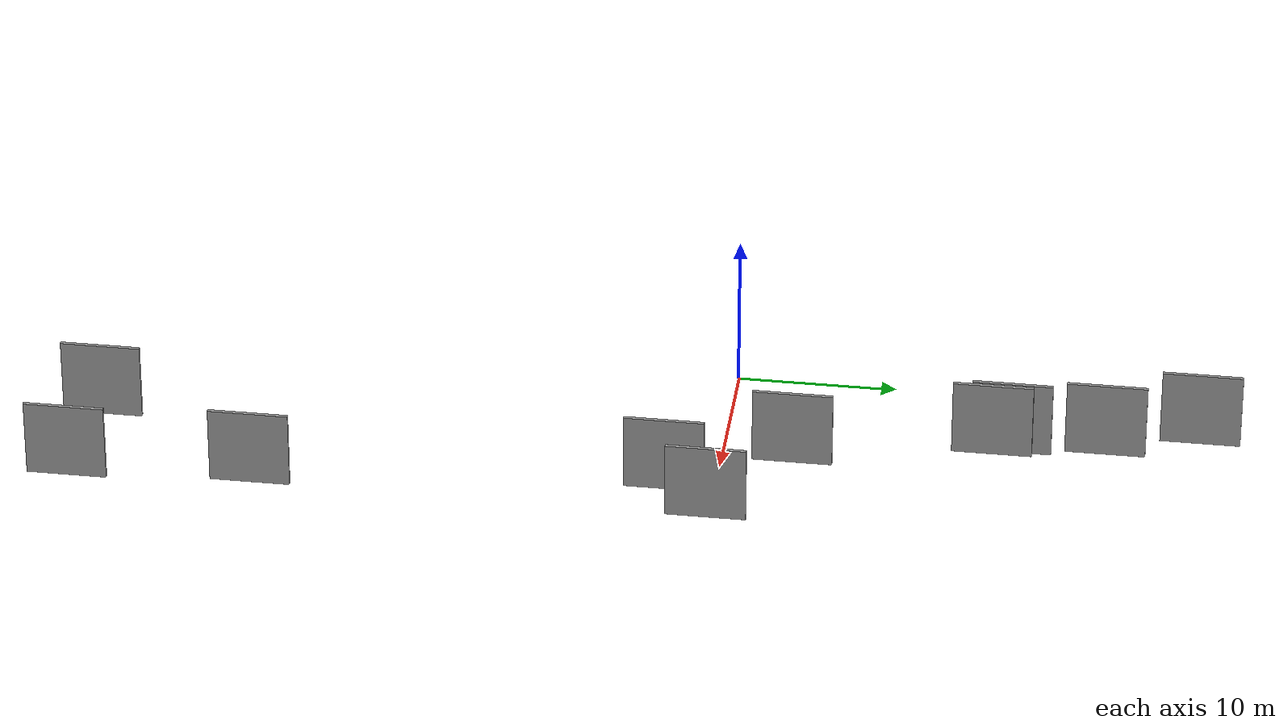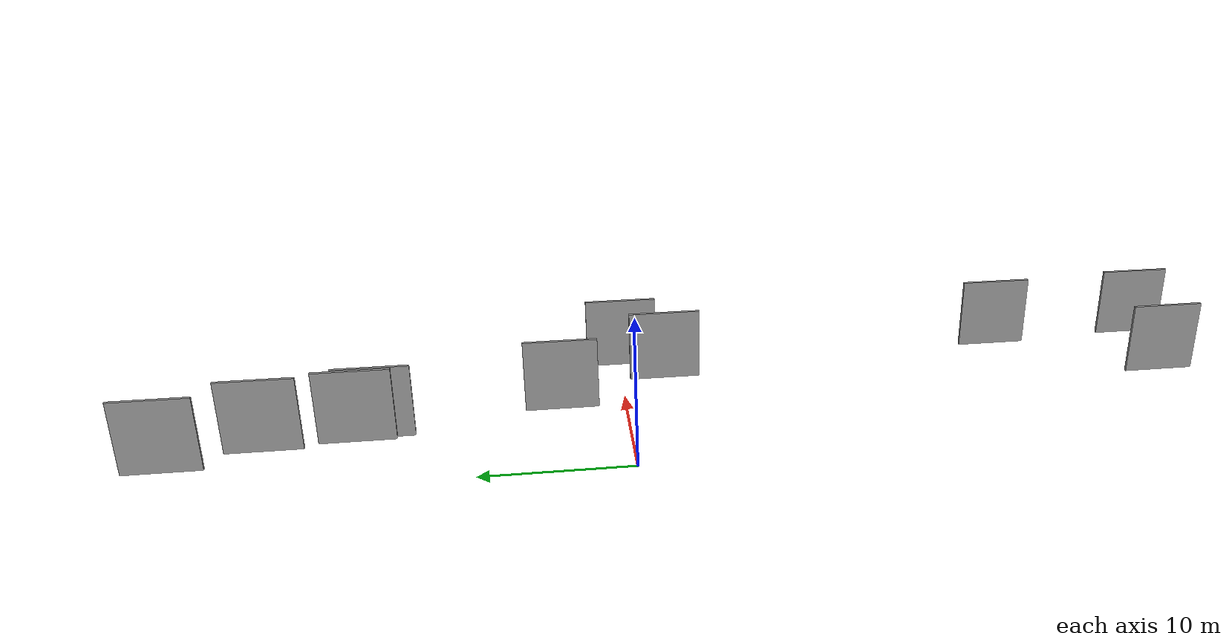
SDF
<sdf version="1.6">
 <world name="default">
  <scene>
   <sky><clouds><speed>12</speed></clouds></sky>
   <ambient>0.4 0.4 0.4 1</ambient>
   <background>0.7 0.7 0.7 1</background>
   <shadows>1</shadows>
  </scene>
  <gravity>0 0 -9.8066</gravity>
  <magnetic_field>6e-06 2.3e-05 -4.2e-05</magnetic_field>
  <physics default="0" name="default_physics" type="ode">
   <ode>
    <solver>
     <type>quick</type>
     <iters>10</iters>
     <sor>1.0</sor>
     <use_dynamic_moi_rescaling>0</use_dynamic_moi_rescaling>
    </solver>
    <constraints>
     <cfm>0</cfm>
     <erp>0.2</erp>
     <contact_max_correcting_vel>100</contact_max_correcting_vel>
     <contact_surface_layer>0.001</contact_surface_layer>
    </constraints>
   </ode>
   <max_step_size>0.004</max_step_size>
   <real_time_factor>1</real_time_factor>
   <real_time_update_rate>250</real_time_update_rate>
  </physics>
  <light name="sun" type="directional">
   <pose>0 0 10 0 0 0</pose>
   <diffuse>0.8 0.8 0.8 1</diffuse>
   <specular>0.2 0.2 0.2 1</specular>
   <attenuation>
    <range>1000</range>
    <constant>0.9</constant>
    <linear>0.01</linear>
    <quadratic>0.001</quadratic>
   </attenuation>
   <direction>-0.5 0.1 -0.9</direction>
  </light>
  <model name="grey_wall_1">
   <static>1</static>
   <pose>8.8391 4.3582 0.0 0.000000 0.000000 1.570796</pose>
   <link name="link">
    <pose>0 0 2.50 0 0 0</pose>
    <collision name="collision"><geometry><box><size>5.00 0.2 5.00</size></box></geometry></collision>
    <visual name="visual">
     <cast_shadows>0</cast_shadows>
     <geometry><box><size>5.00 0.2 5.00</size></box></geometry>
     <material>
      <script>
       <uri>model://grey_wall/materials/scripts</uri>
       <uri>model://grey_wall/materials/textures</uri>
       <name>vrc/grey_wall</name>
      </script>
     </material>
    </visual>
   </link>
  </model>
  <model name="grey_wall_2">
   <static>1</static>
   <pose>3.4165 29.3365 0.0 0.000000 0.000000 1.570796</pose>
   <link name="link">
    <pose>0 0 2.50 0 0 0</pose>
    <collision name="collision"><geometry><box><size>5.00 0.2 5.00</size></box></geometry></collision>
    <visual name="visual">
     <cast_shadows>0</cast_shadows>
     <geometry><box><size>5.00 0.2 5.00</size></box></geometry>
     <material>
      <script>
       <uri>model://grey_wall/materials/scripts</uri>
       <uri>model://grey_wall/materials/textures</uri>
       <name>vrc/grey_wall</name>
      </script>
     </material>
    </visual>
   </link>
  </model>
  <model name="grey_wall_3">
   <static>1</static>
   <pose>15.5218 -0.2248 0.0 0.000000 0.000000 1.570796</pose>
   <link name="link">
    <pose>0 0 2.50 0 0 0</pose>
    <collision name="collision"><geometry><box><size>5.00 0.2 5.00</size></box></geometry></collision>
    <visual name="visual">
     <cast_shadows>0</cast_shadows>
     <geometry><box><size>5.00 0.2 5.00</size></box></geometry>
     <material>
      <script>
       <uri>model://grey_wall/materials/scripts</uri>
       <uri>model://grey_wall/materials/textures</uri>
       <name>vrc/grey_wall</name>
      </script>
     </material>
    </visual>
   </link>
  </model>
  <model name="grey_wall_4">
   <static>1</static>
   <pose>5.9300 17.7278 0.0 0.000000 0.000000 1.570796</pose>
   <link name="link">
    <pose>0 0 2.50 0 0 0</pose>
    <collision name="collision"><geometry><box><size>5.00 0.2 5.00</size></box></geometry></collision>
    <visual name="visual">
     <cast_shadows>0</cast_shadows>
     <geometry><box><size>5.00 0.2 5.00</size></box></geometry>
     <material>
      <script>
       <uri>model://grey_wall/materials/scripts</uri>
       <uri>model://grey_wall/materials/textures</uri>
       <name>vrc/grey_wall</name>
      </script>
     </material>
    </visual>
   </link>
  </model>
  <model name="grey_wall_5">
   <static>1</static>
   <pose>12.7960 -3.1402 0.0 0.000000 0.000000 1.570796</pose>
   <link name="link">
    <pose>0 0 2.50 0 0 0</pose>
    <collision name="collision"><geometry><box><size>5.00 0.2 5.00</size></box></geometry></collision>
    <visual name="visual">
     <cast_shadows>0</cast_shadows>
     <geometry><box><size>5.00 0.2 5.00</size></box></geometry>
     <material>
      <script>
       <uri>model://grey_wall/materials/scripts</uri>
       <uri>model://grey_wall/materials/textures</uri>
       <name>vrc/grey_wall</name>
      </script>
     </material>
    </visual>
   </link>
  </model>
  <model name="grey_wall_6">
   <static>1</static>
   <pose>5.3883 23.5497 0.0 0.000000 0.000000 1.570796</pose>
   <link name="link">
    <pose>0 0 2.50 0 0 0</pose>
    <collision name="collision"><geometry><box><size>5.00 0.2 5.00</size></box></geometry></collision>
    <visual name="visual">
     <cast_shadows>0</cast_shadows>
     <geometry><box><size>5.00 0.2 5.00</size></box></geometry>
     <material>
      <script>
       <uri>model://grey_wall/materials/scripts</uri>
       <uri>model://grey_wall/materials/textures</uri>
       <name>vrc/grey_wall</name>
      </script>
     </material>
    </visual>
   </link>
  </model>
  <model name="grey_wall_7">
   <static>1</static>
   <pose>15.4390 -28.5988 0.0 0.000000 0.000000 1.570796</pose>
   <link name="link">
    <pose>0 0 2.50 0 0 0</pose>
    <collision name="collision"><geometry><box><size>5.00 0.2 5.00</size></box></geometry></collision>
    <visual name="visual">
     <cast_shadows>0</cast_shadows>
     <geometry><box><size>5.00 0.2 5.00</size></box></geometry>
     <material>
      <script>
       <uri>model://grey_wall/materials/scripts</uri>
       <uri>model://grey_wall/materials/textures</uri>
       <name>vrc/grey_wall</name>
      </script>
     </material>
    </visual>
   </link>
  </model>
  <model name="grey_wall_8">
   <static>1</static>
   <pose>16.1554 -39.9791 0.0 0.000000 0.000000 1.570796</pose>
   <link name="link">
    <pose>0 0 2.50 0 0 0</pose>
    <collision name="collision"><geometry><box><size>5.00 0.2 5.00</size></box></geometry></collision>
    <visual name="visual">
     <cast_shadows>0</cast_shadows>
     <geometry><box><size>5.00 0.2 5.00</size></box></geometry>
     <material>
      <script>
       <uri>model://grey_wall/materials/scripts</uri>
       <uri>model://grey_wall/materials/textures</uri>
       <name>vrc/grey_wall</name>
      </script>
     </material>
    </visual>
   </link>
  </model>
  <model name="grey_wall_9">
   <static>1</static>
   <pose>9.1433 -39.1066 0.0 0.000000 0.000000 1.570796</pose>
   <link name="link">
    <pose>0 0 2.50 0 0 0</pose>
    <collision name="collision"><geometry><box><size>5.00 0.2 5.00</size></box></geometry></collision>
    <visual name="visual">
     <cast_shadows>0</cast_shadows>
     <geometry><box><size>5.00 0.2 5.00</size></box></geometry>
     <material>
      <script>
       <uri>model://grey_wall/materials/scripts</uri>
       <uri>model://grey_wall/materials/textures</uri>
       <name>vrc/grey_wall</name>
      </script>
     </material>
    </visual>
   </link>
  </model>
  <model name="grey_wall_10">
   <static>1</static>
   <pose>6.2832 16.5587 0.0 0.000000 0.000000 1.570796</pose>
   <link name="link">
    <pose>0 0 2.50 0 0 0</pose>
    <collision name="collision"><geometry><box><size>5.00 0.2 5.00</size></box></geometry></collision>
    <visual name="visual">
     <cast_shadows>0</cast_shadows>
     <geometry><box><size>5.00 0.2 5.00</size></box></geometry>
     <material>
      <script>
       <uri>model://grey_wall/materials/scripts</uri>
       <uri>model://grey_wall/materials/textures</uri>
       <name>vrc/grey_wall</name>
      </script>
     </material>
    </visual>
   </link>
  </model>
 </world>
</sdf>
